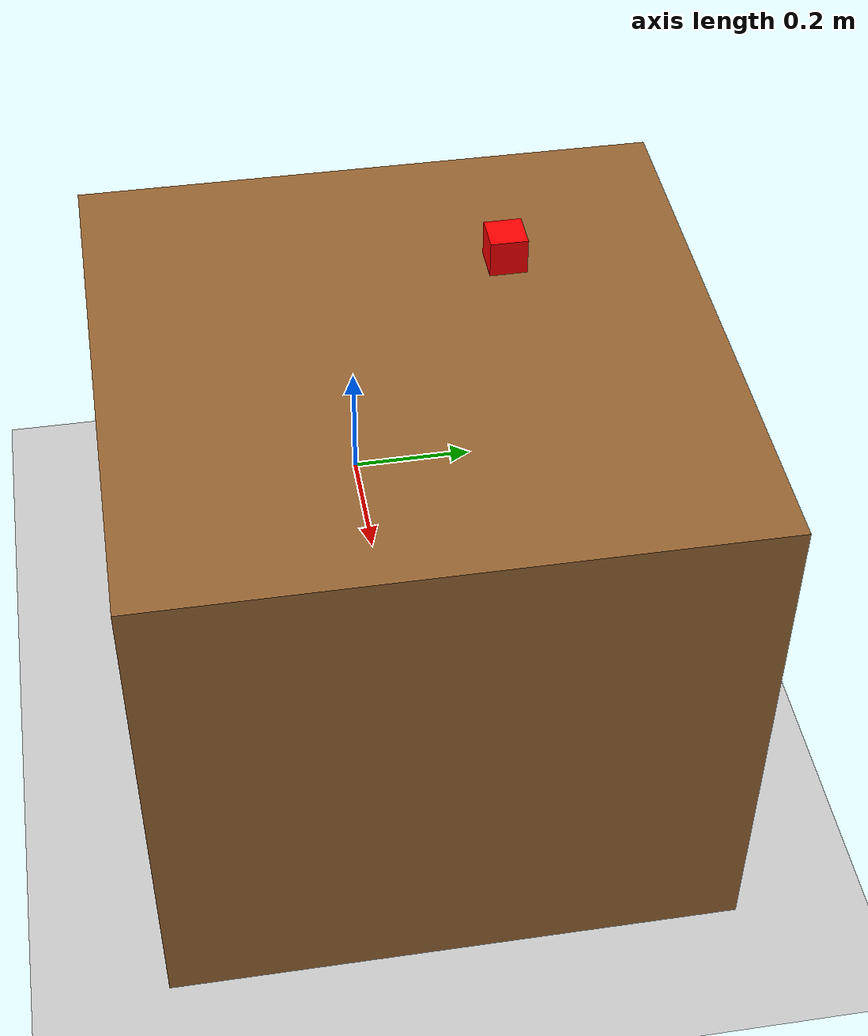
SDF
<?xml version="1.0" ?>
<sdf version="1.9">
  <world name="pick_place_world">

    <physics name="1ms" type="ignored">
      <max_step_size>0.001</max_step_size>
      <real_time_factor>1.0</real_time_factor>
    </physics>

    <plugin filename="gz-sim-physics-system"
            name="gz::sim::systems::Physics"/>
    <plugin filename="gz-sim-scene-broadcaster-system"
            name="gz::sim::systems::SceneBroadcaster"/>
    <plugin filename="gz-sim-user-commands-system"
            name="gz::sim::systems::UserCommands"/>

    <light name="sun" type="directional">
      <cast_shadows>true</cast_shadows>
      <pose>0 0 10 0 0 0</pose>
      <diffuse>0.8 0.8 0.8 1</diffuse>
      <specular>0.2 0.2 0.2 1</specular>
      <direction>-0.5 0.1 -0.9</direction>
    </light>

    <model name="ground_plane">
      <static>true</static>
      <link name="link">
        <collision name="collision">
          <geometry><plane><normal>0 0 1</normal><size>100 100</size></plane></geometry>
        </collision>
        <visual name="visual">
          <geometry><plane><normal>0 0 1</normal><size>100 100</size></plane></geometry>
          <material>
            <ambient>0.8 0.8 0.8 1</ambient>
            <diffuse>0.8 0.8 0.8 1</diffuse>
          </material>
        </visual>
      </link>
    </model>

    <model name="table">
      <static>true</static>
      <pose>0.6 0 0.375 0 0 0</pose>
      <link name="link">
        <collision name="collision">
          <geometry><box><size>0.8 0.8 0.75</size></box></geometry>
        </collision>
        <visual name="visual">
          <geometry><box><size>0.8 0.8 0.75</size></box></geometry>
          <material><ambient>0.6 0.4 0.2 1</ambient></material>
        </visual>
      </link>
    </model>

    <model name="target_box">
      <pose>0.45 0.15 0.78 0 0 0</pose>
      <link name="link">
        <inertial><mass>0.1</mass></inertial>
        <collision name="collision">
          <geometry><box><size>0.05 0.05 0.05</size></box></geometry>
        </collision>
        <visual name="visual">
          <geometry><box><size>0.05 0.05 0.05</size></box></geometry>
          <material><ambient>1 0 0 1</ambient></material>
        </visual>
      </link>
    </model>

  </world>
</sdf>
